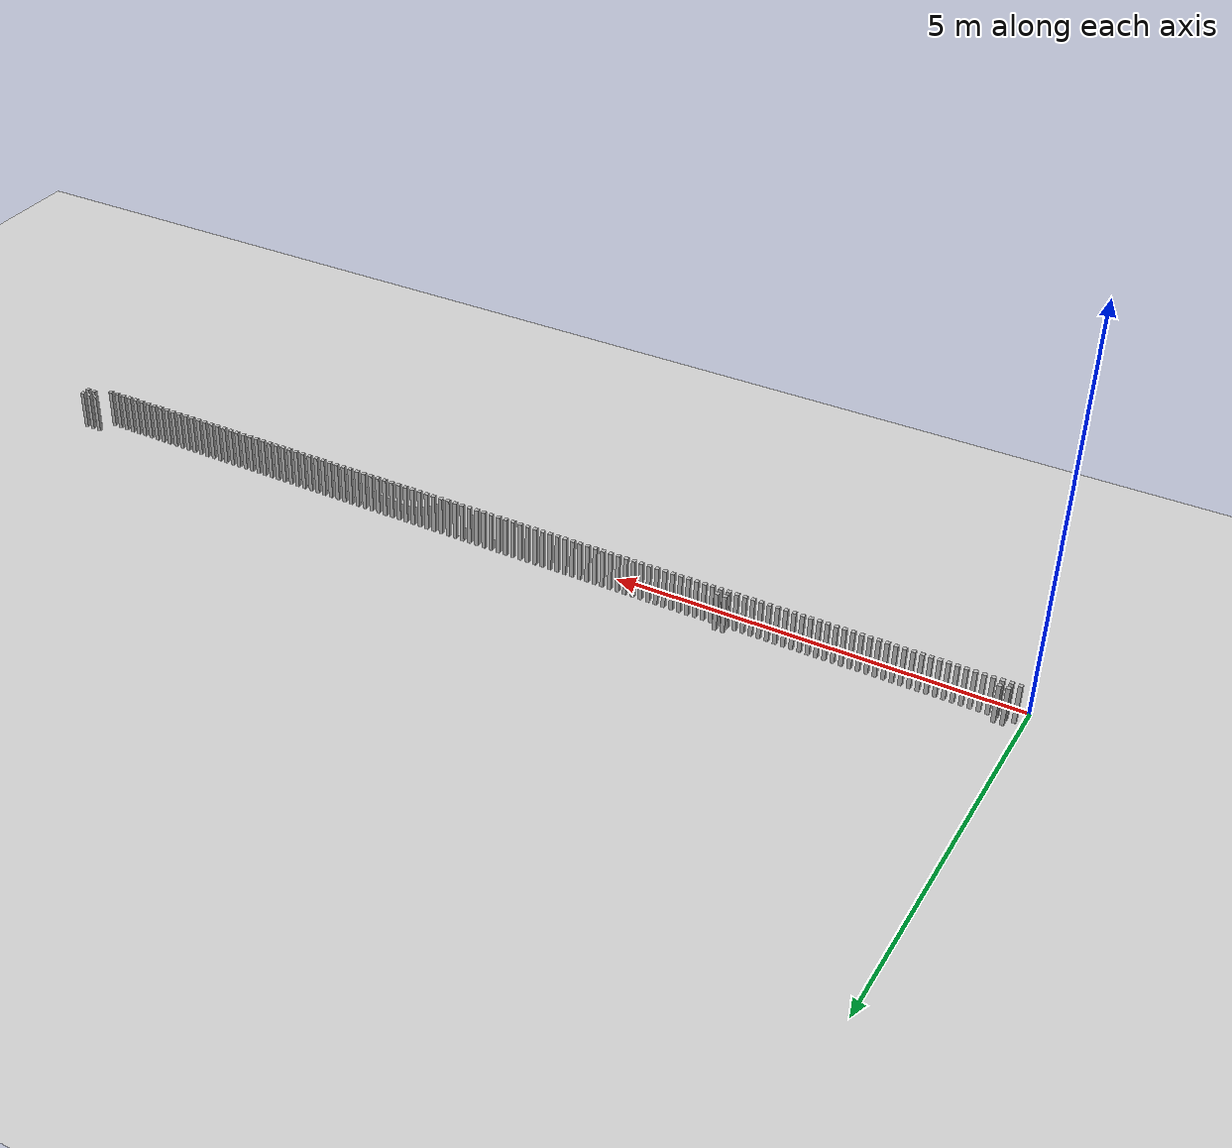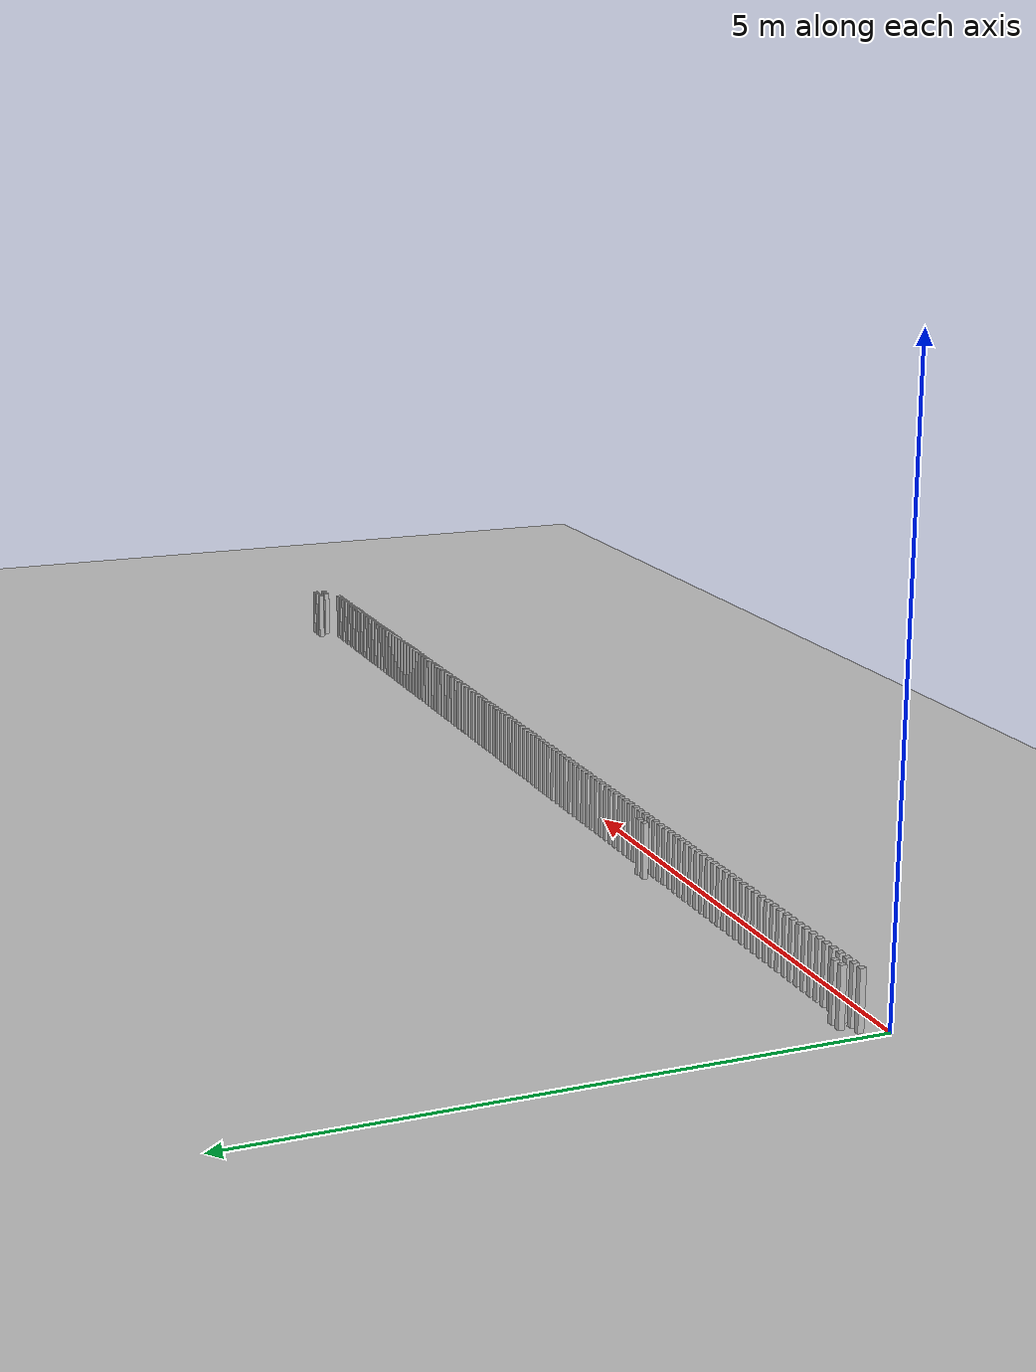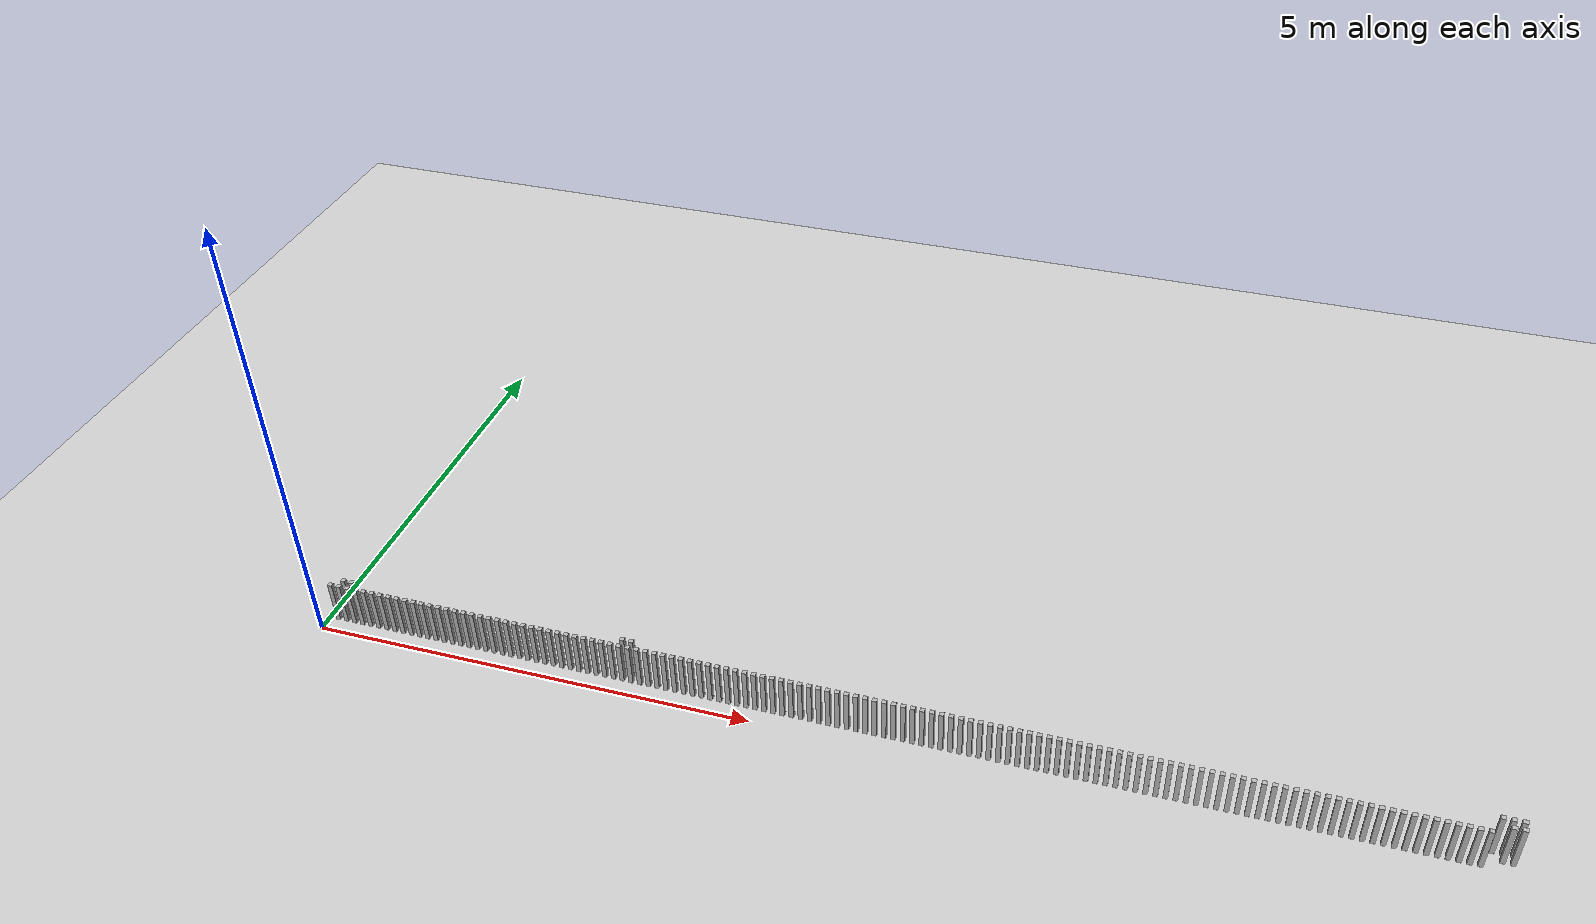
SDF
<sdf version="1.6">
 <world name="default_world">
  <include><uri>model://sun</uri></include>
  <include><uri>model://ground_plane</uri></include>
  <model name="wall_1045">
   <static>true</static>
   <link name="link">
    <collision name="collision"><geometry><box><size>0.05 0.05 0.5</size></box></geometry></collision>
    <visual name="visual"><geometry><box><size>0.05 0.05 0.5</size></box></geometry></visual>
    <pose>12.4 0.4 0.25 0 0 0</pose>
   </link>
  </model>
  <model name="wall_1046">
   <static>true</static>
   <link name="link">
    <collision name="collision"><geometry><box><size>0.05 0.05 0.5</size></box></geometry></collision>
    <visual name="visual"><geometry><box><size>0.05 0.05 0.5</size></box></geometry></visual>
    <pose>12.5 0.4 0.25 0 0 0</pose>
   </link>
  </model>
  <model name="wall_1047">
   <static>true</static>
   <link name="link">
    <collision name="collision"><geometry><box><size>0.05 0.05 0.5</size></box></geometry></collision>
    <visual name="visual"><geometry><box><size>0.05 0.05 0.5</size></box></geometry></visual>
    <pose>12.600000000000001 0.4 0.25 0 0 0</pose>
   </link>
  </model>
  <model name="wall_1048">
   <static>true</static>
   <link name="link">
    <collision name="collision"><geometry><box><size>0.05 0.05 0.5</size></box></geometry></collision>
    <visual name="visual"><geometry><box><size>0.05 0.05 0.5</size></box></geometry></visual>
    <pose>0.2 0.30000000000000004 0.25 0 0 0</pose>
   </link>
  </model>
  <model name="wall_1049">
   <static>true</static>
   <link name="link">
    <collision name="collision"><geometry><box><size>0.05 0.05 0.5</size></box></geometry></collision>
    <visual name="visual"><geometry><box><size>0.05 0.05 0.5</size></box></geometry></visual>
    <pose>0.30000000000000004 0.30000000000000004 0.25 0 0 0</pose>
   </link>
  </model>
  <model name="wall_1050">
   <static>true</static>
   <link name="link">
    <collision name="collision"><geometry><box><size>0.05 0.05 0.5</size></box></geometry></collision>
    <visual name="visual"><geometry><box><size>0.05 0.05 0.5</size></box></geometry></visual>
    <pose>3.5 0.30000000000000004 0.25 0 0 0</pose>
   </link>
  </model>
  <model name="wall_1051">
   <static>true</static>
   <link name="link">
    <collision name="collision"><geometry><box><size>0.05 0.05 0.5</size></box></geometry></collision>
    <visual name="visual"><geometry><box><size>0.05 0.05 0.5</size></box></geometry></visual>
    <pose>3.6 0.30000000000000004 0.25 0 0 0</pose>
   </link>
  </model>
  <model name="wall_1052">
   <static>true</static>
   <link name="link">
    <collision name="collision"><geometry><box><size>0.05 0.05 0.5</size></box></geometry></collision>
    <visual name="visual"><geometry><box><size>0.05 0.05 0.5</size></box></geometry></visual>
    <pose>12.5 0.30000000000000004 0.25 0 0 0</pose>
   </link>
  </model>
  <model name="wall_1053">
   <static>true</static>
   <link name="link">
    <collision name="collision"><geometry><box><size>0.05 0.05 0.5</size></box></geometry></collision>
    <visual name="visual"><geometry><box><size>0.05 0.05 0.5</size></box></geometry></visual>
    <pose>12.600000000000001 0.30000000000000004 0.25 0 0 0</pose>
   </link>
  </model>
  <model name="wall_1054">
   <static>true</static>
   <link name="link">
    <collision name="collision"><geometry><box><size>0.05 0.05 0.5</size></box></geometry></collision>
    <visual name="visual"><geometry><box><size>0.05 0.05 0.5</size></box></geometry></visual>
    <pose>0.1 0.2 0.25 0 0 0</pose>
   </link>
  </model>
  <model name="wall_1055">
   <static>true</static>
   <link name="link">
    <collision name="collision"><geometry><box><size>0.05 0.05 0.5</size></box></geometry></collision>
    <visual name="visual"><geometry><box><size>0.05 0.05 0.5</size></box></geometry></visual>
    <pose>0.2 0.2 0.25 0 0 0</pose>
   </link>
  </model>
  <model name="wall_1056">
   <static>true</static>
   <link name="link">
    <collision name="collision"><geometry><box><size>0.05 0.05 0.5</size></box></geometry></collision>
    <visual name="visual"><geometry><box><size>0.05 0.05 0.5</size></box></geometry></visual>
    <pose>0.30000000000000004 0.2 0.25 0 0 0</pose>
   </link>
  </model>
  <model name="wall_1057">
   <static>true</static>
   <link name="link">
    <collision name="collision"><geometry><box><size>0.05 0.05 0.5</size></box></geometry></collision>
    <visual name="visual"><geometry><box><size>0.05 0.05 0.5</size></box></geometry></visual>
    <pose>0.4 0.2 0.25 0 0 0</pose>
   </link>
  </model>
  <model name="wall_1058">
   <static>true</static>
   <link name="link">
    <collision name="collision"><geometry><box><size>0.05 0.05 0.5</size></box></geometry></collision>
    <visual name="visual"><geometry><box><size>0.05 0.05 0.5</size></box></geometry></visual>
    <pose>0.5 0.2 0.25 0 0 0</pose>
   </link>
  </model>
  <model name="wall_1059">
   <static>true</static>
   <link name="link">
    <collision name="collision"><geometry><box><size>0.05 0.05 0.5</size></box></geometry></collision>
    <visual name="visual"><geometry><box><size>0.05 0.05 0.5</size></box></geometry></visual>
    <pose>0.6000000000000001 0.2 0.25 0 0 0</pose>
   </link>
  </model>
  <model name="wall_1060">
   <static>true</static>
   <link name="link">
    <collision name="collision"><geometry><box><size>0.05 0.05 0.5</size></box></geometry></collision>
    <visual name="visual"><geometry><box><size>0.05 0.05 0.5</size></box></geometry></visual>
    <pose>0.7000000000000001 0.2 0.25 0 0 0</pose>
   </link>
  </model>
  <model name="wall_1061">
   <static>true</static>
   <link name="link">
    <collision name="collision"><geometry><box><size>0.05 0.05 0.5</size></box></geometry></collision>
    <visual name="visual"><geometry><box><size>0.05 0.05 0.5</size></box></geometry></visual>
    <pose>0.8 0.2 0.25 0 0 0</pose>
   </link>
  </model>
  <model name="wall_1062">
   <static>true</static>
   <link name="link">
    <collision name="collision"><geometry><box><size>0.05 0.05 0.5</size></box></geometry></collision>
    <visual name="visual"><geometry><box><size>0.05 0.05 0.5</size></box></geometry></visual>
    <pose>0.9 0.2 0.25 0 0 0</pose>
   </link>
  </model>
  <model name="wall_1063">
   <static>true</static>
   <link name="link">
    <collision name="collision"><geometry><box><size>0.05 0.05 0.5</size></box></geometry></collision>
    <visual name="visual"><geometry><box><size>0.05 0.05 0.5</size></box></geometry></visual>
    <pose>1.0 0.2 0.25 0 0 0</pose>
   </link>
  </model>
  <model name="wall_1064">
   <static>true</static>
   <link name="link">
    <collision name="collision"><geometry><box><size>0.05 0.05 0.5</size></box></geometry></collision>
    <visual name="visual"><geometry><box><size>0.05 0.05 0.5</size></box></geometry></visual>
    <pose>1.1 0.2 0.25 0 0 0</pose>
   </link>
  </model>
  <model name="wall_1065">
   <static>true</static>
   <link name="link">
    <collision name="collision"><geometry><box><size>0.05 0.05 0.5</size></box></geometry></collision>
    <visual name="visual"><geometry><box><size>0.05 0.05 0.5</size></box></geometry></visual>
    <pose>1.2000000000000002 0.2 0.25 0 0 0</pose>
   </link>
  </model>
  <model name="wall_1066">
   <static>true</static>
   <link name="link">
    <collision name="collision"><geometry><box><size>0.05 0.05 0.5</size></box></geometry></collision>
    <visual name="visual"><geometry><box><size>0.05 0.05 0.5</size></box></geometry></visual>
    <pose>1.3 0.2 0.25 0 0 0</pose>
   </link>
  </model>
  <model name="wall_1067">
   <static>true</static>
   <link name="link">
    <collision name="collision"><geometry><box><size>0.05 0.05 0.5</size></box></geometry></collision>
    <visual name="visual"><geometry><box><size>0.05 0.05 0.5</size></box></geometry></visual>
    <pose>1.4000000000000001 0.2 0.25 0 0 0</pose>
   </link>
  </model>
  <model name="wall_1068">
   <static>true</static>
   <link name="link">
    <collision name="collision"><geometry><box><size>0.05 0.05 0.5</size></box></geometry></collision>
    <visual name="visual"><geometry><box><size>0.05 0.05 0.5</size></box></geometry></visual>
    <pose>1.5 0.2 0.25 0 0 0</pose>
   </link>
  </model>
  <model name="wall_1069">
   <static>true</static>
   <link name="link">
    <collision name="collision"><geometry><box><size>0.05 0.05 0.5</size></box></geometry></collision>
    <visual name="visual"><geometry><box><size>0.05 0.05 0.5</size></box></geometry></visual>
    <pose>1.6 0.2 0.25 0 0 0</pose>
   </link>
  </model>
  <model name="wall_1070">
   <static>true</static>
   <link name="link">
    <collision name="collision"><geometry><box><size>0.05 0.05 0.5</size></box></geometry></collision>
    <visual name="visual"><geometry><box><size>0.05 0.05 0.5</size></box></geometry></visual>
    <pose>1.7000000000000002 0.2 0.25 0 0 0</pose>
   </link>
  </model>
  <model name="wall_1071">
   <static>true</static>
   <link name="link">
    <collision name="collision"><geometry><box><size>0.05 0.05 0.5</size></box></geometry></collision>
    <visual name="visual"><geometry><box><size>0.05 0.05 0.5</size></box></geometry></visual>
    <pose>1.8 0.2 0.25 0 0 0</pose>
   </link>
  </model>
  <model name="wall_1072">
   <static>true</static>
   <link name="link">
    <collision name="collision"><geometry><box><size>0.05 0.05 0.5</size></box></geometry></collision>
    <visual name="visual"><geometry><box><size>0.05 0.05 0.5</size></box></geometry></visual>
    <pose>1.9000000000000001 0.2 0.25 0 0 0</pose>
   </link>
  </model>
  <model name="wall_1073">
   <static>true</static>
   <link name="link">
    <collision name="collision"><geometry><box><size>0.05 0.05 0.5</size></box></geometry></collision>
    <visual name="visual"><geometry><box><size>0.05 0.05 0.5</size></box></geometry></visual>
    <pose>2.0 0.2 0.25 0 0 0</pose>
   </link>
  </model>
  <model name="wall_1074">
   <static>true</static>
   <link name="link">
    <collision name="collision"><geometry><box><size>0.05 0.05 0.5</size></box></geometry></collision>
    <visual name="visual"><geometry><box><size>0.05 0.05 0.5</size></box></geometry></visual>
    <pose>2.1 0.2 0.25 0 0 0</pose>
   </link>
  </model>
  <model name="wall_1075">
   <static>true</static>
   <link name="link">
    <collision name="collision"><geometry><box><size>0.05 0.05 0.5</size></box></geometry></collision>
    <visual name="visual"><geometry><box><size>0.05 0.05 0.5</size></box></geometry></visual>
    <pose>2.2 0.2 0.25 0 0 0</pose>
   </link>
  </model>
  <model name="wall_1076">
   <static>true</static>
   <link name="link">
    <collision name="collision"><geometry><box><size>0.05 0.05 0.5</size></box></geometry></collision>
    <visual name="visual"><geometry><box><size>0.05 0.05 0.5</size></box></geometry></visual>
    <pose>2.3000000000000003 0.2 0.25 0 0 0</pose>
   </link>
  </model>
  <model name="wall_1077">
   <static>true</static>
   <link name="link">
    <collision name="collision"><geometry><box><size>0.05 0.05 0.5</size></box></geometry></collision>
    <visual name="visual"><geometry><box><size>0.05 0.05 0.5</size></box></geometry></visual>
    <pose>2.4000000000000004 0.2 0.25 0 0 0</pose>
   </link>
  </model>
  <model name="wall_1078">
   <static>true</static>
   <link name="link">
    <collision name="collision"><geometry><box><size>0.05 0.05 0.5</size></box></geometry></collision>
    <visual name="visual"><geometry><box><size>0.05 0.05 0.5</size></box></geometry></visual>
    <pose>2.5 0.2 0.25 0 0 0</pose>
   </link>
  </model>
  <model name="wall_1079">
   <static>true</static>
   <link name="link">
    <collision name="collision"><geometry><box><size>0.05 0.05 0.5</size></box></geometry></collision>
    <visual name="visual"><geometry><box><size>0.05 0.05 0.5</size></box></geometry></visual>
    <pose>2.6 0.2 0.25 0 0 0</pose>
   </link>
  </model>
  <model name="wall_1080">
   <static>true</static>
   <link name="link">
    <collision name="collision"><geometry><box><size>0.05 0.05 0.5</size></box></geometry></collision>
    <visual name="visual"><geometry><box><size>0.05 0.05 0.5</size></box></geometry></visual>
    <pose>2.7 0.2 0.25 0 0 0</pose>
   </link>
  </model>
  <model name="wall_1081">
   <static>true</static>
   <link name="link">
    <collision name="collision"><geometry><box><size>0.05 0.05 0.5</size></box></geometry></collision>
    <visual name="visual"><geometry><box><size>0.05 0.05 0.5</size></box></geometry></visual>
    <pose>2.8000000000000003 0.2 0.25 0 0 0</pose>
   </link>
  </model>
  <model name="wall_1082">
   <static>true</static>
   <link name="link">
    <collision name="collision"><geometry><box><size>0.05 0.05 0.5</size></box></geometry></collision>
    <visual name="visual"><geometry><box><size>0.05 0.05 0.5</size></box></geometry></visual>
    <pose>2.9000000000000004 0.2 0.25 0 0 0</pose>
   </link>
  </model>
  <model name="wall_1083">
   <static>true</static>
   <link name="link">
    <collision name="collision"><geometry><box><size>0.05 0.05 0.5</size></box></geometry></collision>
    <visual name="visual"><geometry><box><size>0.05 0.05 0.5</size></box></geometry></visual>
    <pose>3.0 0.2 0.25 0 0 0</pose>
   </link>
  </model>
  <model name="wall_1084">
   <static>true</static>
   <link name="link">
    <collision name="collision"><geometry><box><size>0.05 0.05 0.5</size></box></geometry></collision>
    <visual name="visual"><geometry><box><size>0.05 0.05 0.5</size></box></geometry></visual>
    <pose>3.1 0.2 0.25 0 0 0</pose>
   </link>
  </model>
  <model name="wall_1085">
   <static>true</static>
   <link name="link">
    <collision name="collision"><geometry><box><size>0.05 0.05 0.5</size></box></geometry></collision>
    <visual name="visual"><geometry><box><size>0.05 0.05 0.5</size></box></geometry></visual>
    <pose>3.2 0.2 0.25 0 0 0</pose>
   </link>
  </model>
  <model name="wall_1086">
   <static>true</static>
   <link name="link">
    <collision name="collision"><geometry><box><size>0.05 0.05 0.5</size></box></geometry></collision>
    <visual name="visual"><geometry><box><size>0.05 0.05 0.5</size></box></geometry></visual>
    <pose>3.3000000000000003 0.2 0.25 0 0 0</pose>
   </link>
  </model>
  <model name="wall_1087">
   <static>true</static>
   <link name="link">
    <collision name="collision"><geometry><box><size>0.05 0.05 0.5</size></box></geometry></collision>
    <visual name="visual"><geometry><box><size>0.05 0.05 0.5</size></box></geometry></visual>
    <pose>3.4000000000000004 0.2 0.25 0 0 0</pose>
   </link>
  </model>
  <model name="wall_1088">
   <static>true</static>
   <link name="link">
    <collision name="collision"><geometry><box><size>0.05 0.05 0.5</size></box></geometry></collision>
    <visual name="visual"><geometry><box><size>0.05 0.05 0.5</size></box></geometry></visual>
    <pose>3.5 0.2 0.25 0 0 0</pose>
   </link>
  </model>
  <model name="wall_1089">
   <static>true</static>
   <link name="link">
    <collision name="collision"><geometry><box><size>0.05 0.05 0.5</size></box></geometry></collision>
    <visual name="visual"><geometry><box><size>0.05 0.05 0.5</size></box></geometry></visual>
    <pose>3.6 0.2 0.25 0 0 0</pose>
   </link>
  </model>
  <model name="wall_1090">
   <static>true</static>
   <link name="link">
    <collision name="collision"><geometry><box><size>0.05 0.05 0.5</size></box></geometry></collision>
    <visual name="visual"><geometry><box><size>0.05 0.05 0.5</size></box></geometry></visual>
    <pose>3.7 0.2 0.25 0 0 0</pose>
   </link>
  </model>
  <model name="wall_1091">
   <static>true</static>
   <link name="link">
    <collision name="collision"><geometry><box><size>0.05 0.05 0.5</size></box></geometry></collision>
    <visual name="visual"><geometry><box><size>0.05 0.05 0.5</size></box></geometry></visual>
    <pose>3.8000000000000003 0.2 0.25 0 0 0</pose>
   </link>
  </model>
  <model name="wall_1092">
   <static>true</static>
   <link name="link">
    <collision name="collision"><geometry><box><size>0.05 0.05 0.5</size></box></geometry></collision>
    <visual name="visual"><geometry><box><size>0.05 0.05 0.5</size></box></geometry></visual>
    <pose>3.9000000000000004 0.2 0.25 0 0 0</pose>
   </link>
  </model>
  <model name="wall_1093">
   <static>true</static>
   <link name="link">
    <collision name="collision"><geometry><box><size>0.05 0.05 0.5</size></box></geometry></collision>
    <visual name="visual"><geometry><box><size>0.05 0.05 0.5</size></box></geometry></visual>
    <pose>4.0 0.2 0.25 0 0 0</pose>
   </link>
  </model>
  <model name="wall_1094">
   <static>true</static>
   <link name="link">
    <collision name="collision"><geometry><box><size>0.05 0.05 0.5</size></box></geometry></collision>
    <visual name="visual"><geometry><box><size>0.05 0.05 0.5</size></box></geometry></visual>
    <pose>4.1000000000000005 0.2 0.25 0 0 0</pose>
   </link>
  </model>
  <model name="wall_1095">
   <static>true</static>
   <link name="link">
    <collision name="collision"><geometry><box><size>0.05 0.05 0.5</size></box></geometry></collision>
    <visual name="visual"><geometry><box><size>0.05 0.05 0.5</size></box></geometry></visual>
    <pose>4.2 0.2 0.25 0 0 0</pose>
   </link>
  </model>
  <model name="wall_1096">
   <static>true</static>
   <link name="link">
    <collision name="collision"><geometry><box><size>0.05 0.05 0.5</size></box></geometry></collision>
    <visual name="visual"><geometry><box><size>0.05 0.05 0.5</size></box></geometry></visual>
    <pose>4.3 0.2 0.25 0 0 0</pose>
   </link>
  </model>
  <model name="wall_1097">
   <static>true</static>
   <link name="link">
    <collision name="collision"><geometry><box><size>0.05 0.05 0.5</size></box></geometry></collision>
    <visual name="visual"><geometry><box><size>0.05 0.05 0.5</size></box></geometry></visual>
    <pose>4.4 0.2 0.25 0 0 0</pose>
   </link>
  </model>
  <model name="wall_1098">
   <static>true</static>
   <link name="link">
    <collision name="collision"><geometry><box><size>0.05 0.05 0.5</size></box></geometry></collision>
    <visual name="visual"><geometry><box><size>0.05 0.05 0.5</size></box></geometry></visual>
    <pose>4.5 0.2 0.25 0 0 0</pose>
   </link>
  </model>
  <model name="wall_1099">
   <static>true</static>
   <link name="link">
    <collision name="collision"><geometry><box><size>0.05 0.05 0.5</size></box></geometry></collision>
    <visual name="visual"><geometry><box><size>0.05 0.05 0.5</size></box></geometry></visual>
    <pose>4.6000000000000005 0.2 0.25 0 0 0</pose>
   </link>
  </model>
  <model name="wall_1100">
   <static>true</static>
   <link name="link">
    <collision name="collision"><geometry><box><size>0.05 0.05 0.5</size></box></geometry></collision>
    <visual name="visual"><geometry><box><size>0.05 0.05 0.5</size></box></geometry></visual>
    <pose>4.7 0.2 0.25 0 0 0</pose>
   </link>
  </model>
  <model name="wall_1101">
   <static>true</static>
   <link name="link">
    <collision name="collision"><geometry><box><size>0.05 0.05 0.5</size></box></geometry></collision>
    <visual name="visual"><geometry><box><size>0.05 0.05 0.5</size></box></geometry></visual>
    <pose>4.800000000000001 0.2 0.25 0 0 0</pose>
   </link>
  </model>
  <model name="wall_1102">
   <static>true</static>
   <link name="link">
    <collision name="collision"><geometry><box><size>0.05 0.05 0.5</size></box></geometry></collision>
    <visual name="visual"><geometry><box><size>0.05 0.05 0.5</size></box></geometry></visual>
    <pose>4.9 0.2 0.25 0 0 0</pose>
   </link>
  </model>
  <model name="wall_1103">
   <static>true</static>
   <link name="link">
    <collision name="collision"><geometry><box><size>0.05 0.05 0.5</size></box></geometry></collision>
    <visual name="visual"><geometry><box><size>0.05 0.05 0.5</size></box></geometry></visual>
    <pose>5.0 0.2 0.25 0 0 0</pose>
   </link>
  </model>
  <model name="wall_1104">
   <static>true</static>
   <link name="link">
    <collision name="collision"><geometry><box><size>0.05 0.05 0.5</size></box></geometry></collision>
    <visual name="visual"><geometry><box><size>0.05 0.05 0.5</size></box></geometry></visual>
    <pose>5.1000000000000005 0.2 0.25 0 0 0</pose>
   </link>
  </model>
  <model name="wall_1105">
   <static>true</static>
   <link name="link">
    <collision name="collision"><geometry><box><size>0.05 0.05 0.5</size></box></geometry></collision>
    <visual name="visual"><geometry><box><size>0.05 0.05 0.5</size></box></geometry></visual>
    <pose>5.2 0.2 0.25 0 0 0</pose>
   </link>
  </model>
  <model name="wall_1106">
   <static>true</static>
   <link name="link">
    <collision name="collision"><geometry><box><size>0.05 0.05 0.5</size></box></geometry></collision>
    <visual name="visual"><geometry><box><size>0.05 0.05 0.5</size></box></geometry></visual>
    <pose>5.300000000000001 0.2 0.25 0 0 0</pose>
   </link>
  </model>
  <model name="wall_1107">
   <static>true</static>
   <link name="link">
    <collision name="collision"><geometry><box><size>0.05 0.05 0.5</size></box></geometry></collision>
    <visual name="visual"><geometry><box><size>0.05 0.05 0.5</size></box></geometry></visual>
    <pose>5.4 0.2 0.25 0 0 0</pose>
   </link>
  </model>
  <model name="wall_1108">
   <static>true</static>
   <link name="link">
    <collision name="collision"><geometry><box><size>0.05 0.05 0.5</size></box></geometry></collision>
    <visual name="visual"><geometry><box><size>0.05 0.05 0.5</size></box></geometry></visual>
    <pose>5.5 0.2 0.25 0 0 0</pose>
   </link>
  </model>
  <model name="wall_1109">
   <static>true</static>
   <link name="link">
    <collision name="collision"><geometry><box><size>0.05 0.05 0.5</size></box></geometry></collision>
    <visual name="visual"><geometry><box><size>0.05 0.05 0.5</size></box></geometry></visual>
    <pose>5.6000000000000005 0.2 0.25 0 0 0</pose>
   </link>
  </model>
  <model name="wall_1110">
   <static>true</static>
   <link name="link">
    <collision name="collision"><geometry><box><size>0.05 0.05 0.5</size></box></geometry></collision>
    <visual name="visual"><geometry><box><size>0.05 0.05 0.5</size></box></geometry></visual>
    <pose>5.7 0.2 0.25 0 0 0</pose>
   </link>
  </model>
  <model name="wall_1111">
   <static>true</static>
   <link name="link">
    <collision name="collision"><geometry><box><size>0.05 0.05 0.5</size></box></geometry></collision>
    <visual name="visual"><geometry><box><size>0.05 0.05 0.5</size></box></geometry></visual>
    <pose>5.800000000000001 0.2 0.25 0 0 0</pose>
   </link>
  </model>
  <model name="wall_1112">
   <static>true</static>
   <link name="link">
    <collision name="collision"><geometry><box><size>0.05 0.05 0.5</size></box></geometry></collision>
    <visual name="visual"><geometry><box><size>0.05 0.05 0.5</size></box></geometry></visual>
    <pose>5.9 0.2 0.25 0 0 0</pose>
   </link>
  </model>
  <model name="wall_1113">
   <static>true</static>
   <link name="link">
    <collision name="collision"><geometry><box><size>0.05 0.05 0.5</size></box></geometry></collision>
    <visual name="visual"><geometry><box><size>0.05 0.05 0.5</size></box></geometry></visual>
    <pose>6.0 0.2 0.25 0 0 0</pose>
   </link>
  </model>
  <model name="wall_1114">
   <static>true</static>
   <link name="link">
    <collision name="collision"><geometry><box><size>0.05 0.05 0.5</size></box></geometry></collision>
    <visual name="visual"><geometry><box><size>0.05 0.05 0.5</size></box></geometry></visual>
    <pose>6.1000000000000005 0.2 0.25 0 0 0</pose>
   </link>
  </model>
  <model name="wall_1115">
   <static>true</static>
   <link name="link">
    <collision name="collision"><geometry><box><size>0.05 0.05 0.5</size></box></geometry></collision>
    <visual name="visual"><geometry><box><size>0.05 0.05 0.5</size></box></geometry></visual>
    <pose>6.2 0.2 0.25 0 0 0</pose>
   </link>
  </model>
  <model name="wall_1116">
   <static>true</static>
   <link name="link">
    <collision name="collision"><geometry><box><size>0.05 0.05 0.5</size></box></geometry></collision>
    <visual name="visual"><geometry><box><size>0.05 0.05 0.5</size></box></geometry></visual>
    <pose>6.300000000000001 0.2 0.25 0 0 0</pose>
   </link>
  </model>
  <model name="wall_1117">
   <static>true</static>
   <link name="link">
    <collision name="collision"><geometry><box><size>0.05 0.05 0.5</size></box></geometry></collision>
    <visual name="visual"><geometry><box><size>0.05 0.05 0.5</size></box></geometry></visual>
    <pose>6.4 0.2 0.25 0 0 0</pose>
   </link>
  </model>
  <model name="wall_1118">
   <static>true</static>
   <link name="link">
    <collision name="collision"><geometry><box><size>0.05 0.05 0.5</size></box></geometry></collision>
    <visual name="visual"><geometry><box><size>0.05 0.05 0.5</size></box></geometry></visual>
    <pose>6.5 0.2 0.25 0 0 0</pose>
   </link>
  </model>
  <model name="wall_1119">
   <static>true</static>
   <link name="link">
    <collision name="collision"><geometry><box><size>0.05 0.05 0.5</size></box></geometry></collision>
    <visual name="visual"><geometry><box><size>0.05 0.05 0.5</size></box></geometry></visual>
    <pose>6.6000000000000005 0.2 0.25 0 0 0</pose>
   </link>
  </model>
  <model name="wall_1120">
   <static>true</static>
   <link name="link">
    <collision name="collision"><geometry><box><size>0.05 0.05 0.5</size></box></geometry></collision>
    <visual name="visual"><geometry><box><size>0.05 0.05 0.5</size></box></geometry></visual>
    <pose>6.7 0.2 0.25 0 0 0</pose>
   </link>
  </model>
  <model name="wall_1121">
   <static>true</static>
   <link name="link">
    <collision name="collision"><geometry><box><size>0.05 0.05 0.5</size></box></geometry></collision>
    <visual name="visual"><geometry><box><size>0.05 0.05 0.5</size></box></geometry></visual>
    <pose>6.800000000000001 0.2 0.25 0 0 0</pose>
   </link>
  </model>
  <model name="wall_1122">
   <static>true</static>
   <link name="link">
    <collision name="collision"><geometry><box><size>0.05 0.05 0.5</size></box></geometry></collision>
    <visual name="visual"><geometry><box><size>0.05 0.05 0.5</size></box></geometry></visual>
    <pose>6.9 0.2 0.25 0 0 0</pose>
   </link>
  </model>
  <model name="wall_1123">
   <static>true</static>
   <link name="link">
    <collision name="collision"><geometry><box><size>0.05 0.05 0.5</size></box></geometry></collision>
    <visual name="visual"><geometry><box><size>0.05 0.05 0.5</size></box></geometry></visual>
    <pose>7.0 0.2 0.25 0 0 0</pose>
   </link>
  </model>
  <model name="wall_1124">
   <static>true</static>
   <link name="link">
    <collision name="collision"><geometry><box><size>0.05 0.05 0.5</size></box></geometry></collision>
    <visual name="visual"><geometry><box><size>0.05 0.05 0.5</size></box></geometry></visual>
    <pose>7.1000000000000005 0.2 0.25 0 0 0</pose>
   </link>
  </model>
  <model name="wall_1125">
   <static>true</static>
   <link name="link">
    <collision name="collision"><geometry><box><size>0.05 0.05 0.5</size></box></geometry></collision>
    <visual name="visual"><geometry><box><size>0.05 0.05 0.5</size></box></geometry></visual>
    <pose>7.2 0.2 0.25 0 0 0</pose>
   </link>
  </model>
  <model name="wall_1126">
   <static>true</static>
   <link name="link">
    <collision name="collision"><geometry><box><size>0.05 0.05 0.5</size></box></geometry></collision>
    <visual name="visual"><geometry><box><size>0.05 0.05 0.5</size></box></geometry></visual>
    <pose>7.300000000000001 0.2 0.25 0 0 0</pose>
   </link>
  </model>
  <model name="wall_1127">
   <static>true</static>
   <link name="link">
    <collision name="collision"><geometry><box><size>0.05 0.05 0.5</size></box></geometry></collision>
    <visual name="visual"><geometry><box><size>0.05 0.05 0.5</size></box></geometry></visual>
    <pose>7.4 0.2 0.25 0 0 0</pose>
   </link>
  </model>
  <model name="wall_1128">
   <static>true</static>
   <link name="link">
    <collision name="collision"><geometry><box><size>0.05 0.05 0.5</size></box></geometry></collision>
    <visual name="visual"><geometry><box><size>0.05 0.05 0.5</size></box></geometry></visual>
    <pose>7.5 0.2 0.25 0 0 0</pose>
   </link>
  </model>
  <model name="wall_1129">
   <static>true</static>
   <link name="link">
    <collision name="collision"><geometry><box><size>0.05 0.05 0.5</size></box></geometry></collision>
    <visual name="visual"><geometry><box><size>0.05 0.05 0.5</size></box></geometry></visual>
    <pose>7.6000000000000005 0.2 0.25 0 0 0</pose>
   </link>
  </model>
  <model name="wall_1130">
   <static>true</static>
   <link name="link">
    <collision name="collision"><geometry><box><size>0.05 0.05 0.5</size></box></geometry></collision>
    <visual name="visual"><geometry><box><size>0.05 0.05 0.5</size></box></geometry></visual>
    <pose>7.7 0.2 0.25 0 0 0</pose>
   </link>
  </model>
  <model name="wall_1131">
   <static>true</static>
   <link name="link">
    <collision name="collision"><geometry><box><size>0.05 0.05 0.5</size></box></geometry></collision>
    <visual name="visual"><geometry><box><size>0.05 0.05 0.5</size></box></geometry></visual>
    <pose>7.800000000000001 0.2 0.25 0 0 0</pose>
   </link>
  </model>
  <model name="wall_1132">
   <static>true</static>
   <link name="link">
    <collision name="collision"><geometry><box><size>0.05 0.05 0.5</size></box></geometry></collision>
    <visual name="visual"><geometry><box><size>0.05 0.05 0.5</size></box></geometry></visual>
    <pose>7.9 0.2 0.25 0 0 0</pose>
   </link>
  </model>
  <model name="wall_1133">
   <static>true</static>
   <link name="link">
    <collision name="collision"><geometry><box><size>0.05 0.05 0.5</size></box></geometry></collision>
    <visual name="visual"><geometry><box><size>0.05 0.05 0.5</size></box></geometry></visual>
    <pose>8.0 0.2 0.25 0 0 0</pose>
   </link>
  </model>
  <model name="wall_1134">
   <static>true</static>
   <link name="link">
    <collision name="collision"><geometry><box><size>0.05 0.05 0.5</size></box></geometry></collision>
    <visual name="visual"><geometry><box><size>0.05 0.05 0.5</size></box></geometry></visual>
    <pose>8.1 0.2 0.25 0 0 0</pose>
   </link>
  </model>
  <model name="wall_1135">
   <static>true</static>
   <link name="link">
    <collision name="collision"><geometry><box><size>0.05 0.05 0.5</size></box></geometry></collision>
    <visual name="visual"><geometry><box><size>0.05 0.05 0.5</size></box></geometry></visual>
    <pose>8.200000000000001 0.2 0.25 0 0 0</pose>
   </link>
  </model>
  <model name="wall_1136">
   <static>true</static>
   <link name="link">
    <collision name="collision"><geometry><box><size>0.05 0.05 0.5</size></box></geometry></collision>
    <visual name="visual"><geometry><box><size>0.05 0.05 0.5</size></box></geometry></visual>
    <pose>8.3 0.2 0.25 0 0 0</pose>
   </link>
  </model>
  <model name="wall_1137">
   <static>true</static>
   <link name="link">
    <collision name="collision"><geometry><box><size>0.05 0.05 0.5</size></box></geometry></collision>
    <visual name="visual"><geometry><box><size>0.05 0.05 0.5</size></box></geometry></visual>
    <pose>8.4 0.2 0.25 0 0 0</pose>
   </link>
  </model>
  <model name="wall_1138">
   <static>true</static>
   <link name="link">
    <collision name="collision"><geometry><box><size>0.05 0.05 0.5</size></box></geometry></collision>
    <visual name="visual"><geometry><box><size>0.05 0.05 0.5</size></box></geometry></visual>
    <pose>8.5 0.2 0.25 0 0 0</pose>
   </link>
  </model>
  <model name="wall_1139">
   <static>true</static>
   <link name="link">
    <collision name="collision"><geometry><box><size>0.05 0.05 0.5</size></box></geometry></collision>
    <visual name="visual"><geometry><box><size>0.05 0.05 0.5</size></box></geometry></visual>
    <pose>8.6 0.2 0.25 0 0 0</pose>
   </link>
  </model>
  <model name="wall_1140">
   <static>true</static>
   <link name="link">
    <collision name="collision"><geometry><box><size>0.05 0.05 0.5</size></box></geometry></collision>
    <visual name="visual"><geometry><box><size>0.05 0.05 0.5</size></box></geometry></visual>
    <pose>8.700000000000001 0.2 0.25 0 0 0</pose>
   </link>
  </model>
  <model name="wall_1141">
   <static>true</static>
   <link name="link">
    <collision name="collision"><geometry><box><size>0.05 0.05 0.5</size></box></geometry></collision>
    <visual name="visual"><geometry><box><size>0.05 0.05 0.5</size></box></geometry></visual>
    <pose>8.8 0.2 0.25 0 0 0</pose>
   </link>
  </model>
  <model name="wall_1142">
   <static>true</static>
   <link name="link">
    <collision name="collision"><geometry><box><size>0.05 0.05 0.5</size></box></geometry></collision>
    <visual name="visual"><geometry><box><size>0.05 0.05 0.5</size></box></geometry></visual>
    <pose>8.9 0.2 0.25 0 0 0</pose>
   </link>
  </model>
  <model name="wall_1143">
   <static>true</static>
   <link name="link">
    <collision name="collision"><geometry><box><size>0.05 0.05 0.5</size></box></geometry></collision>
    <visual name="visual"><geometry><box><size>0.05 0.05 0.5</size></box></geometry></visual>
    <pose>9.0 0.2 0.25 0 0 0</pose>
   </link>
  </model>
  <model name="wall_1144">
   <static>true</static>
   <link name="link">
    <collision name="collision"><geometry><box><size>0.05 0.05 0.5</size></box></geometry></collision>
    <visual name="visual"><geometry><box><size>0.05 0.05 0.5</size></box></geometry></visual>
    <pose>9.1 0.2 0.25 0 0 0</pose>
   </link>
  </model>
  <model name="wall_1145">
   <static>true</static>
   <link name="link">
    <collision name="collision"><geometry><box><size>0.05 0.05 0.5</size></box></geometry></collision>
    <visual name="visual"><geometry><box><size>0.05 0.05 0.5</size></box></geometry></visual>
    <pose>9.200000000000001 0.2 0.25 0 0 0</pose>
   </link>
  </model>
  <model name="wall_1146">
   <static>true</static>
   <link name="link">
    <collision name="collision"><geometry><box><size>0.05 0.05 0.5</size></box></geometry></collision>
    <visual name="visual"><geometry><box><size>0.05 0.05 0.5</size></box></geometry></visual>
    <pose>9.3 0.2 0.25 0 0 0</pose>
   </link>
  </model>
  <model name="wall_1147">
   <static>true</static>
   <link name="link">
    <collision name="collision"><geometry><box><size>0.05 0.05 0.5</size></box></geometry></collision>
    <visual name="visual"><geometry><box><size>0.05 0.05 0.5</size></box></geometry></visual>
    <pose>9.4 0.2 0.25 0 0 0</pose>
   </link>
  </model>
  <model name="wall_1148">
   <static>true</static>
   <link name="link">
    <collision name="collision"><geometry><box><size>0.05 0.05 0.5</size></box></geometry></collision>
    <visual name="visual"><geometry><box><size>0.05 0.05 0.5</size></box></geometry></visual>
    <pose>9.5 0.2 0.25 0 0 0</pose>
   </link>
  </model>
  <model name="wall_1149">
   <static>true</static>
   <link name="link">
    <collision name="collision"><geometry><box><size>0.05 0.05 0.5</size></box></geometry></collision>
    <visual name="visual"><geometry><box><size>0.05 0.05 0.5</size></box></geometry></visual>
    <pose>9.600000000000001 0.2 0.25 0 0 0</pose>
   </link>
  </model>
  <model name="wall_1150">
   <static>true</static>
   <link name="link">
    <collision name="collision"><geometry><box><size>0.05 0.05 0.5</size></box></geometry></collision>
    <visual name="visual"><geometry><box><size>0.05 0.05 0.5</size></box></geometry></visual>
    <pose>9.700000000000001 0.2 0.25 0 0 0</pose>
   </link>
  </model>
  <model name="wall_1151">
   <static>true</static>
   <link name="link">
    <collision name="collision"><geometry><box><size>0.05 0.05 0.5</size></box></geometry></collision>
    <visual name="visual"><geometry><box><size>0.05 0.05 0.5</size></box></geometry></visual>
    <pose>9.8 0.2 0.25 0 0 0</pose>
   </link>
  </model>
  <model name="wall_1152">
   <static>true</static>
   <link name="link">
    <collision name="collision"><geometry><box><size>0.05 0.05 0.5</size></box></geometry></collision>
    <visual name="visual"><geometry><box><size>0.05 0.05 0.5</size></box></geometry></visual>
    <pose>9.9 0.2 0.25 0 0 0</pose>
   </link>
  </model>
  <model name="wall_1153">
   <static>true</static>
   <link name="link">
    <collision name="collision"><geometry><box><size>0.05 0.05 0.5</size></box></geometry></collision>
    <visual name="visual"><geometry><box><size>0.05 0.05 0.5</size></box></geometry></visual>
    <pose>10.0 0.2 0.25 0 0 0</pose>
   </link>
  </model>
  <model name="wall_1154">
   <static>true</static>
   <link name="link">
    <collision name="collision"><geometry><box><size>0.05 0.05 0.5</size></box></geometry></collision>
    <visual name="visual"><geometry><box><size>0.05 0.05 0.5</size></box></geometry></visual>
    <pose>10.100000000000001 0.2 0.25 0 0 0</pose>
   </link>
  </model>
  <model name="wall_1155">
   <static>true</static>
   <link name="link">
    <collision name="collision"><geometry><box><size>0.05 0.05 0.5</size></box></geometry></collision>
    <visual name="visual"><geometry><box><size>0.05 0.05 0.5</size></box></geometry></visual>
    <pose>10.200000000000001 0.2 0.25 0 0 0</pose>
   </link>
  </model>
  <model name="wall_1156">
   <static>true</static>
   <link name="link">
    <collision name="collision"><geometry><box><size>0.05 0.05 0.5</size></box></geometry></collision>
    <visual name="visual"><geometry><box><size>0.05 0.05 0.5</size></box></geometry></visual>
    <pose>10.3 0.2 0.25 0 0 0</pose>
   </link>
  </model>
  <model name="wall_1157">
   <static>true</static>
   <link name="link">
    <collision name="collision"><geometry><box><size>0.05 0.05 0.5</size></box></geometry></collision>
    <visual name="visual"><geometry><box><size>0.05 0.05 0.5</size></box></geometry></visual>
    <pose>10.4 0.2 0.25 0 0 0</pose>
   </link>
  </model>
  <model name="wall_1158">
   <static>true</static>
   <link name="link">
    <collision name="collision"><geometry><box><size>0.05 0.05 0.5</size></box></geometry></collision>
    <visual name="visual"><geometry><box><size>0.05 0.05 0.5</size></box></geometry></visual>
    <pose>10.5 0.2 0.25 0 0 0</pose>
   </link>
  </model>
  <model name="wall_1159">
   <static>true</static>
   <link name="link">
    <collision name="collision"><geometry><box><size>0.05 0.05 0.5</size></box></geometry></collision>
    <visual name="visual"><geometry><box><size>0.05 0.05 0.5</size></box></geometry></visual>
    <pose>10.600000000000001 0.2 0.25 0 0 0</pose>
   </link>
  </model>
  <model name="wall_1160">
   <static>true</static>
   <link name="link">
    <collision name="collision"><geometry><box><size>0.05 0.05 0.5</size></box></geometry></collision>
    <visual name="visual"><geometry><box><size>0.05 0.05 0.5</size></box></geometry></visual>
    <pose>10.700000000000001 0.2 0.25 0 0 0</pose>
   </link>
  </model>
  <model name="wall_1161">
   <static>true</static>
   <link name="link">
    <collision name="collision"><geometry><box><size>0.05 0.05 0.5</size></box></geometry></collision>
    <visual name="visual"><geometry><box><size>0.05 0.05 0.5</size></box></geometry></visual>
    <pose>10.8 0.2 0.25 0 0 0</pose>
   </link>
  </model>
  <model name="wall_1162">
   <static>true</static>
   <link name="link">
    <collision name="collision"><geometry><box><size>0.05 0.05 0.5</size></box></geometry></collision>
    <visual name="visual"><geometry><box><size>0.05 0.05 0.5</size></box></geometry></visual>
    <pose>10.9 0.2 0.25 0 0 0</pose>
   </link>
  </model>
  <model name="wall_1163">
   <static>true</static>
   <link name="link">
    <collision name="collision"><geometry><box><size>0.05 0.05 0.5</size></box></geometry></collision>
    <visual name="visual"><geometry><box><size>0.05 0.05 0.5</size></box></geometry></visual>
    <pose>11.0 0.2 0.25 0 0 0</pose>
   </link>
  </model>
  <model name="wall_1164">
   <static>true</static>
   <link name="link">
    <collision name="collision"><geometry><box><size>0.05 0.05 0.5</size></box></geometry></collision>
    <visual name="visual"><geometry><box><size>0.05 0.05 0.5</size></box></geometry></visual>
    <pose>11.100000000000001 0.2 0.25 0 0 0</pose>
   </link>
  </model>
  <model name="wall_1165">
   <static>true</static>
   <link name="link">
    <collision name="collision"><geometry><box><size>0.05 0.05 0.5</size></box></geometry></collision>
    <visual name="visual"><geometry><box><size>0.05 0.05 0.5</size></box></geometry></visual>
    <pose>11.200000000000001 0.2 0.25 0 0 0</pose>
   </link>
  </model>
  <model name="wall_1166">
   <static>true</static>
   <link name="link">
    <collision name="collision"><geometry><box><size>0.05 0.05 0.5</size></box></geometry></collision>
    <visual name="visual"><geometry><box><size>0.05 0.05 0.5</size></box></geometry></visual>
    <pose>11.3 0.2 0.25 0 0 0</pose>
   </link>
  </model>
  <model name="wall_1167">
   <static>true</static>
   <link name="link">
    <collision name="collision"><geometry><box><size>0.05 0.05 0.5</size></box></geometry></collision>
    <visual name="visual"><geometry><box><size>0.05 0.05 0.5</size></box></geometry></visual>
    <pose>11.4 0.2 0.25 0 0 0</pose>
   </link>
  </model>
  <model name="wall_1168">
   <static>true</static>
   <link name="link">
    <collision name="collision"><geometry><box><size>0.05 0.05 0.5</size></box></geometry></collision>
    <visual name="visual"><geometry><box><size>0.05 0.05 0.5</size></box></geometry></visual>
    <pose>11.5 0.2 0.25 0 0 0</pose>
   </link>
  </model>
  <model name="wall_1169">
   <static>true</static>
   <link name="link">
    <collision name="collision"><geometry><box><size>0.05 0.05 0.5</size></box></geometry></collision>
    <visual name="visual"><geometry><box><size>0.05 0.05 0.5</size></box></geometry></visual>
    <pose>11.600000000000001 0.2 0.25 0 0 0</pose>
   </link>
  </model>
  <model name="wall_1170">
   <static>true</static>
   <link name="link">
    <collision name="collision"><geometry><box><size>0.05 0.05 0.5</size></box></geometry></collision>
    <visual name="visual"><geometry><box><size>0.05 0.05 0.5</size></box></geometry></visual>
    <pose>11.700000000000001 0.2 0.25 0 0 0</pose>
   </link>
  </model>
  <model name="wall_1171">
   <static>true</static>
   <link name="link">
    <collision name="collision"><geometry><box><size>0.05 0.05 0.5</size></box></geometry></collision>
    <visual name="visual"><geometry><box><size>0.05 0.05 0.5</size></box></geometry></visual>
    <pose>11.8 0.2 0.25 0 0 0</pose>
   </link>
  </model>
  <model name="wall_1172">
   <static>true</static>
   <link name="link">
    <collision name="collision"><geometry><box><size>0.05 0.05 0.5</size></box></geometry></collision>
    <visual name="visual"><geometry><box><size>0.05 0.05 0.5</size></box></geometry></visual>
    <pose>11.9 0.2 0.25 0 0 0</pose>
   </link>
  </model>
  <model name="wall_1173">
   <static>true</static>
   <link name="link">
    <collision name="collision"><geometry><box><size>0.05 0.05 0.5</size></box></geometry></collision>
    <visual name="visual"><geometry><box><size>0.05 0.05 0.5</size></box></geometry></visual>
    <pose>12.0 0.2 0.25 0 0 0</pose>
   </link>
  </model>
  <model name="wall_1174">
   <static>true</static>
   <link name="link">
    <collision name="collision"><geometry><box><size>0.05 0.05 0.5</size></box></geometry></collision>
    <visual name="visual"><geometry><box><size>0.05 0.05 0.5</size></box></geometry></visual>
    <pose>12.100000000000001 0.2 0.25 0 0 0</pose>
   </link>
  </model>
  <model name="wall_1175">
   <static>true</static>
   <link name="link">
    <collision name="collision"><geometry><box><size>0.05 0.05 0.5</size></box></geometry></collision>
    <visual name="visual"><geometry><box><size>0.05 0.05 0.5</size></box></geometry></visual>
    <pose>12.200000000000001 0.2 0.25 0 0 0</pose>
   </link>
  </model>
  <model name="wall_1176">
   <static>true</static>
   <link name="link">
    <collision name="collision"><geometry><box><size>0.05 0.05 0.5</size></box></geometry></collision>
    <visual name="visual"><geometry><box><size>0.05 0.05 0.5</size></box></geometry></visual>
    <pose>12.3 0.2 0.25 0 0 0</pose>
   </link>
  </model>
 </world>
</sdf>
